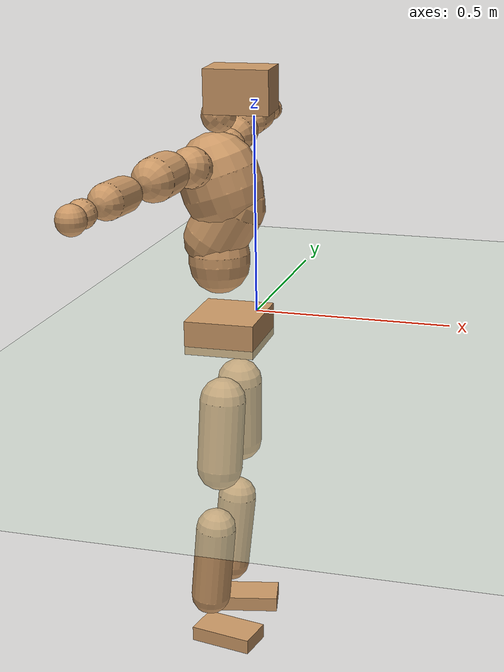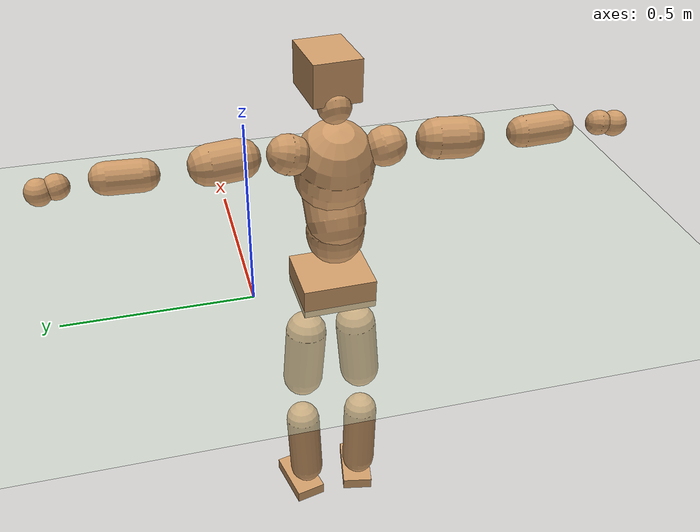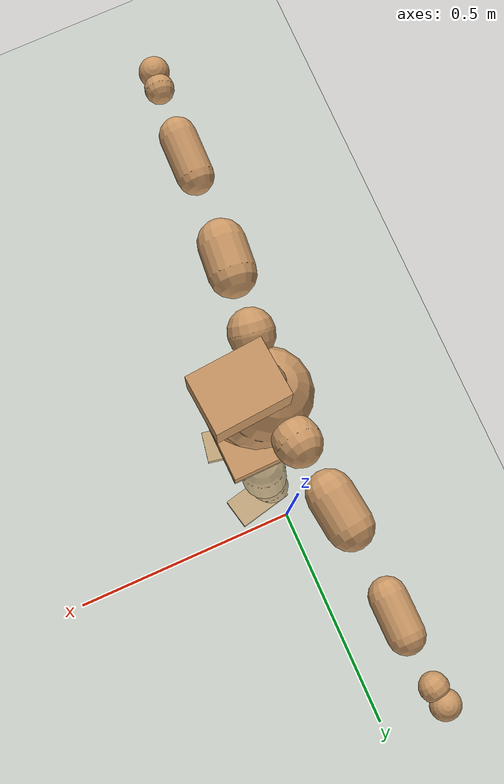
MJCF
<mujoco model="humanoid">
  <compiler coordinate="local" angle="radian"/>
  <default>
    <joint damping="0.0" armature="0.01" stiffness="0.0" limited="true"/>
    <geom conaffinity="1" condim="3" contype="7" margin="0.001" rgba="0.8 0.6 .4 1"/>
  </default>
  <asset>
    <texture type="skybox" builtin="gradient" rgb1=".4 .5 .6" rgb2="0 0 0" width="100" height="100"/>
    <texture builtin="flat" height="1278" mark="cross" markrgb="1 1 1" name="texgeom" random="0.01" rgb1="0.8 0.6 0.4" rgb2="0.8 0.6 0.4" type="cube" width="127"/>
    <texture builtin="checker" height="100" name="texplane" rgb1="0 0 0" rgb2="0.8 0.8 0.8" type="2d" width="100"/>
    <material name="MatPlane" reflectance="0.5" shininess="1" specular="1" texrepeat="60 60" texture="texplane"/>
    <material name="geom" texture="texgeom" texuniform="true"/>
  </asset>
  <worldbody>
    <light cutoff="100" diffuse="1 1 1" dir="-0 0 -1.3" directional="true" exponent="1" pos="0 0 1.3" specular=".1 .1 .1"/>
    <geom conaffinity="1" condim="3" name="floor" pos="0 0 0" rgba="0.8 0.9 0.8 1" size="100 100 .2" type="plane" material="MatPlane"/>
    <body name="Pelvis" pos="-0.0005 -0.2118 0.0316">
      <freejoint name="Pelvis"/>
      <geom type="box" contype="1" conaffinity="1" density="5359.374984" pos="-0.0047 -0.0001 -0.0124" size="0.0844 0.0972 0.0409" quat="0.9999 0.0000 0.0000 0.0108" name="Pelvis"/>
      <body name="L_Hip" pos="-0.0023 0.0653 -0.0876">
        <joint name="L_Hip_x" type="hinge" pos="0 0 0" axis="1 0 0" stiffness="1600" damping="160" armature="0.02" range="-180.0000 180.0000"/>
        <joint name="L_Hip_y" type="hinge" pos="0 0 0" axis="0 1 0" stiffness="1600" damping="160" armature="0.02" range="-180.0000 180.0000"/>
        <joint name="L_Hip_z" type="hinge" pos="0 0 0" axis="0 0 1" stiffness="1600" damping="160" armature="0.02" range="-180.0000 180.0000"/>
        <geom type="capsule" contype="1" conaffinity="1" density="2040.816327" size="0.0564" fromto="-0.0029 0.0067 -0.0861 -0.0085 0.0196 -0.2510" name="L_Hip"/>
        <body name="L_Knee" pos="-0.0114 0.0263 -0.3371">
          <joint name="L_Knee_x" type="hinge" pos="0 0 0" axis="1 0 0" stiffness="1600" damping="160" armature="0.02" range="-180.0000 180.0000"/>
          <joint name="L_Knee_y" type="hinge" pos="0 0 0" axis="0 1 0" stiffness="1600" damping="160" armature="0.02" range="-180.0000 180.0000"/>
          <joint name="L_Knee_z" type="hinge" pos="0 0 0" axis="0 0 1" stiffness="1600" damping="160" armature="0.02" range="-180.0000 180.0000"/>
          <geom type="capsule" contype="1" conaffinity="1" density="1234.567901" size="0.0489" fromto="-0.0083 -0.0022 -0.0784 -0.0290 -0.0075 -0.2735" name="L_Knee"/>
          <body name="L_Ankle" pos="-0.0373 -0.0097 -0.3519">
            <joint name="L_Ankle_x" type="hinge" pos="0 0 0" axis="1 0 0" stiffness="1600" damping="160" armature="0.02" range="-180.0000 180.0000"/>
            <joint name="L_Ankle_y" type="hinge" pos="0 0 0" axis="0 1 0" stiffness="1600" damping="160" armature="0.02" range="-180.0000 180.0000"/>
            <joint name="L_Ankle_z" type="hinge" pos="0 0 0" axis="0 0 1" stiffness="1600" damping="160" armature="0.02" range="-180.0000 180.0000"/>
            <geom type="box" contype="1" conaffinity="1" density="1000.000083" pos="0.0539 0.0119 -0.0256" size="0.0783 0.0442 0.0187" quat="0.9941 0.0000 0.0000 0.1081" name="L_Ankle"/>
            <body name="L_Toe" pos="0.1079 0.0238 -0.0513">
              <joint name="L_Toe_x" type="hinge" pos="0 0 0" axis="1 0 0" stiffness="1000" damping="100" armature="0.02" range="-180.0000 180.0000"/>
              <joint name="L_Toe_y" type="hinge" pos="0 0 0" axis="0 1 0" stiffness="1000" damping="100" armature="0.02" range="-180.0000 180.0000"/>
              <joint name="L_Toe_z" type="hinge" pos="0 0 0" axis="0 0 1" stiffness="1000" damping="100" armature="0.02" range="-180.0000 180.0000"/>
              <geom type="box" contype="1" conaffinity="1" density="8307126.968149" pos="0.0000 0.0000 0.0257" size="0.0009 0.0022 0.0009" quat="0.9934 0.0000 0.0000 0.1148" name="L_Toe"/>
            </body>
          </body>
        </body>
      </body>
      <body name="R_Hip" pos="-0.0001 -0.0631 -0.0877">
        <joint name="R_Hip_x" type="hinge" pos="0 0 0" axis="1 0 0" stiffness="1600" damping="160" armature="0.02" range="-180.0000 180.0000"/>
        <joint name="R_Hip_y" type="hinge" pos="0 0 0" axis="0 1 0" stiffness="1600" damping="160" armature="0.02" range="-180.0000 180.0000"/>
        <joint name="R_Hip_z" type="hinge" pos="0 0 0" axis="0 0 1" stiffness="1600" damping="160" armature="0.02" range="-180.0000 180.0000"/>
        <geom type="capsule" contype="1" conaffinity="1" density="2040.816327" size="0.0558" fromto="-0.0032 -0.0074 -0.0854 -0.0097 -0.0223 -0.2572" name="R_Hip"/>
        <body name="R_Knee" pos="-0.0129 -0.0298 -0.3426">
          <joint name="R_Knee_x" type="hinge" pos="0 0 0" axis="1 0 0" stiffness="1600" damping="160" armature="0.02" range="-180.0000 180.0000"/>
          <joint name="R_Knee_y" type="hinge" pos="0 0 0" axis="0 1 0" stiffness="1600" damping="160" armature="0.02" range="-180.0000 180.0000"/>
          <joint name="R_Knee_z" type="hinge" pos="0 0 0" axis="0 0 1" stiffness="1600" damping="160" armature="0.02" range="-180.0000 180.0000"/>
          <geom type="capsule" contype="1" conaffinity="1" density="1234.567901" size="0.0491" fromto="-0.0083 0.0027 -0.0787 -0.0289 0.0096 -0.2745" name="R_Knee"/>
          <body name="R_Ankle" pos="-0.0372 0.0123 -0.3532">
            <joint name="R_Ankle_x" type="hinge" pos="0 0 0" axis="1 0 0" stiffness="1600" damping="160" armature="0.02" range="-180.0000 180.0000"/>
            <joint name="R_Ankle_y" type="hinge" pos="0 0 0" axis="0 1 0" stiffness="1600" damping="160" armature="0.02" range="-180.0000 180.0000"/>
            <joint name="R_Ankle_z" type="hinge" pos="0 0 0" axis="0 0 1" stiffness="1600" damping="160" armature="0.02" range="-180.0000 180.0000"/>
            <geom type="box" contype="1" conaffinity="1" density="999.999906" pos="0.0554 -0.0105 -0.0206" size="0.0789 0.0444 0.0185" quat="0.9956 0.0000 0.0000 -0.0933" name="R_Ankle"/>
            <body name="R_Toe" pos="0.1108 -0.0209 -0.0411">
              <joint name="R_Toe_x" type="hinge" pos="0 0 0" axis="1 0 0" stiffness="1000" damping="100" armature="0.02" range="-180.0000 180.0000"/>
              <joint name="R_Toe_y" type="hinge" pos="0 0 0" axis="0 1 0" stiffness="1000" damping="100" armature="0.02" range="-180.0000 180.0000"/>
              <joint name="R_Toe_z" type="hinge" pos="0 0 0" axis="0 0 1" stiffness="1000" damping="100" armature="0.02" range="-180.0000 180.0000"/>
              <geom type="box" contype="1" conaffinity="1" density="8003445.008632" pos="0.0000 0.0000 0.0227" size="0.0008 0.0022 0.001" quat="0.9965 0.0000 0.0000 -0.0831" name="R_Toe"/>
            </body>
          </body>
        </body>
      </body>
      <body name="Torso" pos="-0.0259 -0.0028 0.1011">
        <joint name="Torso_x" type="hinge" pos="0 0 0" axis="1 0 0" stiffness="2000" damping="200" armature="0.02" range="-180.0000 180.0000"/>
        <joint name="Torso_y" type="hinge" pos="0 0 0" axis="0 1 0" stiffness="2000" damping="200" armature="0.02" range="-180.0000 180.0000"/>
        <joint name="Torso_z" type="hinge" pos="0 0 0" axis="0 0 1" stiffness="2000" damping="200" armature="0.02" range="-180.0000 180.0000"/>
        <geom type="capsule" contype="1" conaffinity="1" density="2040.816327" size="0.0736" fromto="-0.0014 0.0021 0.0736 -0.0010 0.0014 0.0503" name="Torso"/>
        <body name="Spine" pos="-0.0024 0.0035 0.1239">
          <joint name="Spine_x" type="hinge" pos="0 0 0" axis="1 0 0" stiffness="2000" damping="200" armature="0.02" range="-180.0000 180.0000"/>
          <joint name="Spine_y" type="hinge" pos="0 0 0" axis="0 1 0" stiffness="2000" damping="200" armature="0.02" range="-180.0000 180.0000"/>
          <joint name="Spine_z" type="hinge" pos="0 0 0" axis="0 0 1" stiffness="2000" damping="200" armature="0.02" range="-180.0000 180.0000"/>
          <geom type="capsule" contype="1" conaffinity="1" density="2040.816327" size="0.0755" fromto="0.0386 0.0034 0.0649 -0.0091 -0.0008 -0.0153" name="Spine"/>
          <body name="Chest" pos="0.0295 0.0026 0.0496">
            <joint name="Chest_x" type="hinge" pos="0 0 0" axis="1 0 0" stiffness="2000" damping="200" armature="0.02" range="-180.0000 180.0000"/>
            <joint name="Chest_y" type="hinge" pos="0 0 0" axis="0 1 0" stiffness="2000" damping="200" armature="0.02" range="-180.0000 180.0000"/>
            <joint name="Chest_z" type="hinge" pos="0 0 0" axis="0 0 1" stiffness="2000" damping="200" armature="0.02" range="-180.0000 180.0000"/>
            <geom type="capsule" contype="1" conaffinity="1" density="2040.816327" size="0.097" fromto="-0.0301 -0.0004 0.0922 -0.0163 -0.0002 0.0501" name="Chest"/>
            <body name="Neck" pos="-0.0509 -0.0001 0.1987">
              <joint name="Neck_x" type="hinge" pos="0 0 0" axis="1 0 0" stiffness="1000" damping="100" armature="0.02" range="-180.0000 180.0000"/>
              <joint name="Neck_y" type="hinge" pos="0 0 0" axis="0 1 0" stiffness="1000" damping="100" armature="0.02" range="-180.0000 180.0000"/>
              <joint name="Neck_z" type="hinge" pos="0 0 0" axis="0 0 1" stiffness="1000" damping="100" armature="0.02" range="-180.0000 180.0000"/>
              <geom type="capsule" contype="1" conaffinity="1" density="1000" size="0.0409" fromto="0.0273 0.0012 0.0305 0.0254 0.0011 0.0285" name="Neck"/>
              <body name="Head" pos="0.0527 0.0024 0.059">
                <joint name="Head_x" type="hinge" pos="0 0 0" axis="1 0 0" stiffness="1000" damping="100" armature="0.02" range="-180.0000 180.0000"/>
                <joint name="Head_y" type="hinge" pos="0 0 0" axis="0 1 0" stiffness="1000" damping="100" armature="0.02" range="-180.0000 180.0000"/>
                <joint name="Head_z" type="hinge" pos="0 0 0" axis="0 0 1" stiffness="1000" damping="100" armature="0.02" range="-180.0000 180.0000"/>
                <geom type="box" contype="1" conaffinity="1" density="2250.000035" pos="0.0273 0.0022 0.0305" size="0.0759 0.0587 0.0512" quat="0.9992 0.0000 0.0000 0.0398" name="Head"/>
              </body>
            </body>
            <body name="L_Thorax" pos="-0.0415 0.0732 0.1155">
              <joint name="L_Thorax_x" type="hinge" pos="0 0 0" axis="1 0 0" stiffness="1000" damping="100" armature="0.02" range="-180.0000 180.0000"/>
              <joint name="L_Thorax_y" type="hinge" pos="0 0 0" axis="0 1 0" stiffness="1000" damping="100" armature="0.02" range="-180.0000 180.0000"/>
              <joint name="L_Thorax_z" type="hinge" pos="0 0 0" axis="0 0 1" stiffness="1000" damping="100" armature="0.02" range="-180.0000 180.0000"/>
              <geom type="capsule" contype="1" conaffinity="1" density="1000" size="0.0477" fromto="-0.0048 0.0450 0.0152 -0.0036 0.0335 0.0114" name="L_Thorax"/>
              <body name="L_Shoulder" pos="-0.0084 0.0785 0.0266">
                <joint name="L_Shoulder_x" type="hinge" pos="0 0 0" axis="1 0 0" stiffness="1000" damping="100" armature="0.02" range="-720.0000 720.0000"/>
                <joint name="L_Shoulder_y" type="hinge" pos="0 0 0" axis="0 1 0" stiffness="1000" damping="100" armature="0.02" range="-720.0000 720.0000"/>
                <joint name="L_Shoulder_z" type="hinge" pos="0 0 0" axis="0 0 1" stiffness="1000" damping="100" armature="0.02" range="-720.0000 720.0000"/>
                <geom type="capsule" contype="1" conaffinity="1" density="1000" size="0.0476" fromto="-0.0093 0.0770 -0.0015 -0.0181 0.1499 -0.0029" name="L_Shoulder"/>
                <body name="L_Elbow" pos="-0.0274 0.227 -0.0044">
                  <joint name="L_Elbow_x" type="hinge" pos="0 0 0" axis="1 0 0" stiffness="1000" damping="100" armature="0.02" range="-720.0000 720.0000"/>
                  <joint name="L_Elbow_y" type="hinge" pos="0 0 0" axis="0 1 0" stiffness="1000" damping="100" armature="0.02" range="-720.0000 720.0000"/>
                  <joint name="L_Elbow_z" type="hinge" pos="0 0 0" axis="0 0 1" stiffness="1000" damping="100" armature="0.02" range="-720.0000 720.0000"/>
                  <geom type="capsule" contype="1" conaffinity="1" density="1000" size="0.0373" fromto="-0.0004 0.0673 0.0025 -0.0008 0.1471 0.0054" name="L_Elbow"/>
                  <body name="L_Wrist" pos="-0.0012 0.2144 0.0079">
                    <joint name="L_Wrist_x" type="hinge" pos="0 0 0" axis="1 0 0" stiffness="600" damping="60" armature="0.02" range="-180.0000 180.0000"/>
                    <joint name="L_Wrist_y" type="hinge" pos="0 0 0" axis="0 1 0" stiffness="600" damping="60" armature="0.02" range="-180.0000 180.0000"/>
                    <joint name="L_Wrist_z" type="hinge" pos="0 0 0" axis="0 0 1" stiffness="600" damping="60" armature="0.02" range="-180.0000 180.0000"/>
                    <geom type="capsule" contype="1" conaffinity="1" density="1000" size="0.0288" fromto="-0.0061 0.0366 -0.0042 -0.0065 0.0386 -0.0045" name="L_Wrist"/>
                    <body name="L_Hand" pos="-0.0126 0.0752 -0.0087">
                      <joint name="L_Hand_x" type="hinge" pos="0 0 0" axis="1 0 0" stiffness="600" damping="60" armature="0.02" range="-180.0000 180.0000"/>
                      <joint name="L_Hand_y" type="hinge" pos="0 0 0" axis="0 1 0" stiffness="600" damping="60" armature="0.02" range="-180.0000 180.0000"/>
                      <joint name="L_Hand_z" type="hinge" pos="0 0 0" axis="0 0 1" stiffness="600" damping="60" armature="0.02" range="-180.0000 180.0000"/>
                      <geom type="sphere" contype="1" conaffinity="1" density="1000" size="0.0306" pos="0.0000 0.0000 0.0000" name="L_Hand"/>
                    </body>
                  </body>
                </body>
              </body>
            </body>
            <body name="R_Thorax" pos="-0.0469 -0.0751 0.1129">
              <joint name="R_Thorax_x" type="hinge" pos="0 0 0" axis="1 0 0" stiffness="1000" damping="100" armature="0.02" range="-180.0000 180.0000"/>
              <joint name="R_Thorax_y" type="hinge" pos="0 0 0" axis="0 1 0" stiffness="1000" damping="100" armature="0.02" range="-180.0000 180.0000"/>
              <joint name="R_Thorax_z" type="hinge" pos="0 0 0" axis="0 0 1" stiffness="1000" damping="100" armature="0.02" range="-180.0000 180.0000"/>
              <geom type="capsule" contype="1" conaffinity="1" density="1000" size="0.0477" fromto="-0.0064 -0.0450 0.0143 -0.0055 -0.0390 0.0124" name="R_Thorax"/>
              <body name="R_Shoulder" pos="-0.0119 -0.084 0.0267">
                <joint name="R_Shoulder_x" type="hinge" pos="0 0 0" axis="1 0 0" stiffness="1000" damping="100" armature="0.02" range="-720.0000 720.0000"/>
                <joint name="R_Shoulder_y" type="hinge" pos="0 0 0" axis="0 1 0" stiffness="1000" damping="100" armature="0.02" range="-720.0000 720.0000"/>
                <joint name="R_Shoulder_z" type="hinge" pos="0 0 0" axis="0 0 1" stiffness="1000" damping="100" armature="0.02" range="-720.0000 720.0000"/>
                <geom type="capsule" contype="1" conaffinity="1" density="1000" size="0.0492" fromto="-0.0072 -0.0788 -0.0025 -0.0132 -0.1436 -0.0045" name="R_Shoulder"/>
                <body name="R_Elbow" pos="-0.0204 -0.2224 -0.007">
                  <joint name="R_Elbow_x" type="hinge" pos="0 0 0" axis="1 0 0" stiffness="1000" damping="100" armature="0.02" range="-720.0000 720.0000"/>
                  <joint name="R_Elbow_y" type="hinge" pos="0 0 0" axis="0 1 0" stiffness="1000" damping="100" armature="0.02" range="-720.0000 720.0000"/>
                  <joint name="R_Elbow_z" type="hinge" pos="0 0 0" axis="0 0 1" stiffness="1000" damping="100" armature="0.02" range="-720.0000 720.0000"/>
                  <geom type="capsule" contype="1" conaffinity="1" density="1000" size="0.038" fromto="-0.0010 -0.0679 0.0029 -0.0024 -0.1563 0.0068" name="R_Elbow"/>
                  <body name="R_Wrist" pos="-0.0034 -0.2242 0.0097">
                    <joint name="R_Wrist_x" type="hinge" pos="0 0 0" axis="1 0 0" stiffness="600" damping="60" armature="0.02" range="-180.0000 180.0000"/>
                    <joint name="R_Wrist_y" type="hinge" pos="0 0 0" axis="0 1 0" stiffness="600" damping="60" armature="0.02" range="-180.0000 180.0000"/>
                    <joint name="R_Wrist_z" type="hinge" pos="0 0 0" axis="0 0 1" stiffness="600" damping="60" armature="0.02" range="-180.0000 180.0000"/>
                    <geom type="capsule" contype="1" conaffinity="1" density="1000" size="0.0299" fromto="-0.0048 -0.0372 -0.0032 -0.0050 -0.0392 -0.0034" name="R_Wrist"/>
                    <body name="R_Hand" pos="-0.0098 -0.0763 -0.0066">
                      <joint name="R_Hand_x" type="hinge" pos="0 0 0" axis="1 0 0" stiffness="600" damping="60" armature="0.02" range="-180.0000 180.0000"/>
                      <joint name="R_Hand_y" type="hinge" pos="0 0 0" axis="0 1 0" stiffness="600" damping="60" armature="0.02" range="-180.0000 180.0000"/>
                      <joint name="R_Hand_z" type="hinge" pos="0 0 0" axis="0 0 1" stiffness="600" damping="60" armature="0.02" range="-180.0000 180.0000"/>
                      <geom type="sphere" contype="1" conaffinity="1" density="1000" size="0.0310" pos="0.0000 0.0000 0.0000" name="R_Hand"/>
                    </body>
                  </body>
                </body>
              </body>
            </body>
          </body>
        </body>
      </body>
    </body>
  </worldbody>
  <actuator>
    <motor name="L_Hip_x" joint="L_Hip_x" gear="500"/>
    <motor name="L_Hip_y" joint="L_Hip_y" gear="500"/>
    <motor name="L_Hip_z" joint="L_Hip_z" gear="500"/>
    <motor name="L_Knee_x" joint="L_Knee_x" gear="500"/>
    <motor name="L_Knee_y" joint="L_Knee_y" gear="500"/>
    <motor name="L_Knee_z" joint="L_Knee_z" gear="500"/>
    <motor name="L_Ankle_x" joint="L_Ankle_x" gear="500"/>
    <motor name="L_Ankle_y" joint="L_Ankle_y" gear="500"/>
    <motor name="L_Ankle_z" joint="L_Ankle_z" gear="500"/>
    <motor name="L_Toe_x" joint="L_Toe_x" gear="500"/>
    <motor name="L_Toe_y" joint="L_Toe_y" gear="500"/>
    <motor name="L_Toe_z" joint="L_Toe_z" gear="500"/>
    <motor name="R_Hip_x" joint="R_Hip_x" gear="500"/>
    <motor name="R_Hip_y" joint="R_Hip_y" gear="500"/>
    <motor name="R_Hip_z" joint="R_Hip_z" gear="500"/>
    <motor name="R_Knee_x" joint="R_Knee_x" gear="500"/>
    <motor name="R_Knee_y" joint="R_Knee_y" gear="500"/>
    <motor name="R_Knee_z" joint="R_Knee_z" gear="500"/>
    <motor name="R_Ankle_x" joint="R_Ankle_x" gear="500"/>
    <motor name="R_Ankle_y" joint="R_Ankle_y" gear="500"/>
    <motor name="R_Ankle_z" joint="R_Ankle_z" gear="500"/>
    <motor name="R_Toe_x" joint="R_Toe_x" gear="500"/>
    <motor name="R_Toe_y" joint="R_Toe_y" gear="500"/>
    <motor name="R_Toe_z" joint="R_Toe_z" gear="500"/>
    <motor name="Torso_x" joint="Torso_x" gear="500"/>
    <motor name="Torso_y" joint="Torso_y" gear="500"/>
    <motor name="Torso_z" joint="Torso_z" gear="500"/>
    <motor name="Spine_x" joint="Spine_x" gear="500"/>
    <motor name="Spine_y" joint="Spine_y" gear="500"/>
    <motor name="Spine_z" joint="Spine_z" gear="500"/>
    <motor name="Chest_x" joint="Chest_x" gear="500"/>
    <motor name="Chest_y" joint="Chest_y" gear="500"/>
    <motor name="Chest_z" joint="Chest_z" gear="500"/>
    <motor name="Neck_x" joint="Neck_x" gear="500"/>
    <motor name="Neck_y" joint="Neck_y" gear="500"/>
    <motor name="Neck_z" joint="Neck_z" gear="500"/>
    <motor name="Head_x" joint="Head_x" gear="500"/>
    <motor name="Head_y" joint="Head_y" gear="500"/>
    <motor name="Head_z" joint="Head_z" gear="500"/>
    <motor name="L_Thorax_x" joint="L_Thorax_x" gear="500"/>
    <motor name="L_Thorax_y" joint="L_Thorax_y" gear="500"/>
    <motor name="L_Thorax_z" joint="L_Thorax_z" gear="500"/>
    <motor name="L_Shoulder_x" joint="L_Shoulder_x" gear="500"/>
    <motor name="L_Shoulder_y" joint="L_Shoulder_y" gear="500"/>
    <motor name="L_Shoulder_z" joint="L_Shoulder_z" gear="500"/>
    <motor name="L_Elbow_x" joint="L_Elbow_x" gear="500"/>
    <motor name="L_Elbow_y" joint="L_Elbow_y" gear="500"/>
    <motor name="L_Elbow_z" joint="L_Elbow_z" gear="500"/>
    <motor name="L_Wrist_x" joint="L_Wrist_x" gear="500"/>
    <motor name="L_Wrist_y" joint="L_Wrist_y" gear="500"/>
    <motor name="L_Wrist_z" joint="L_Wrist_z" gear="500"/>
    <motor name="L_Hand_x" joint="L_Hand_x" gear="500"/>
    <motor name="L_Hand_y" joint="L_Hand_y" gear="500"/>
    <motor name="L_Hand_z" joint="L_Hand_z" gear="500"/>
    <motor name="R_Thorax_x" joint="R_Thorax_x" gear="500"/>
    <motor name="R_Thorax_y" joint="R_Thorax_y" gear="500"/>
    <motor name="R_Thorax_z" joint="R_Thorax_z" gear="500"/>
    <motor name="R_Shoulder_x" joint="R_Shoulder_x" gear="500"/>
    <motor name="R_Shoulder_y" joint="R_Shoulder_y" gear="500"/>
    <motor name="R_Shoulder_z" joint="R_Shoulder_z" gear="500"/>
    <motor name="R_Elbow_x" joint="R_Elbow_x" gear="500"/>
    <motor name="R_Elbow_y" joint="R_Elbow_y" gear="500"/>
    <motor name="R_Elbow_z" joint="R_Elbow_z" gear="500"/>
    <motor name="R_Wrist_x" joint="R_Wrist_x" gear="500"/>
    <motor name="R_Wrist_y" joint="R_Wrist_y" gear="500"/>
    <motor name="R_Wrist_z" joint="R_Wrist_z" gear="500"/>
    <motor name="R_Hand_x" joint="R_Hand_x" gear="500"/>
    <motor name="R_Hand_y" joint="R_Hand_y" gear="500"/>
    <motor name="R_Hand_z" joint="R_Hand_z" gear="500"/>
  </actuator>
  <contact>
    <exclude body1="Torso" body2="Chest"/>
    <exclude body1="Head" body2="Chest"/>
    <exclude body1="R_Knee" body2="R_Toe"/>
    <exclude body1="R_Knee" body2="L_Ankle"/>
    <exclude body1="R_Knee" body2="L_Toe"/>
    <exclude body1="L_Knee" body2="L_Toe"/>
    <exclude body1="L_Knee" body2="R_Ankle"/>
    <exclude body1="L_Knee" body2="R_Toe"/>
    <exclude body1="L_Shoulder" body2="Chest"/>
    <exclude body1="R_Shoulder" body2="Chest"/>
  </contact>
  <sensor/>
  <size njmax="700" nconmax="700"/>
</mujoco>
